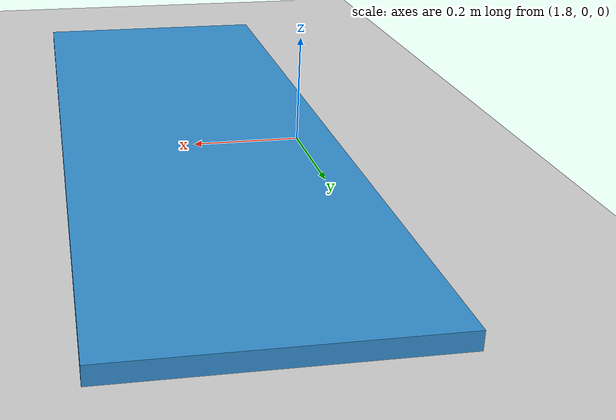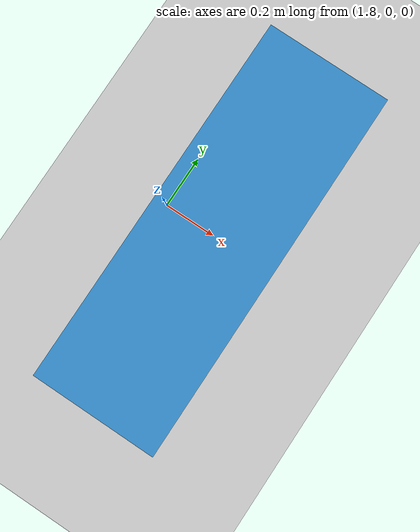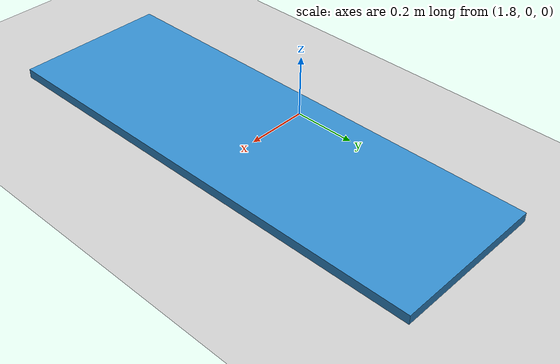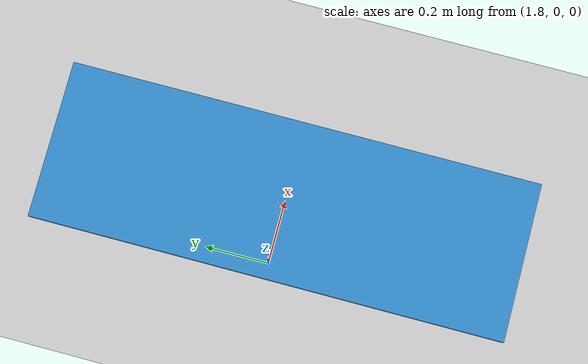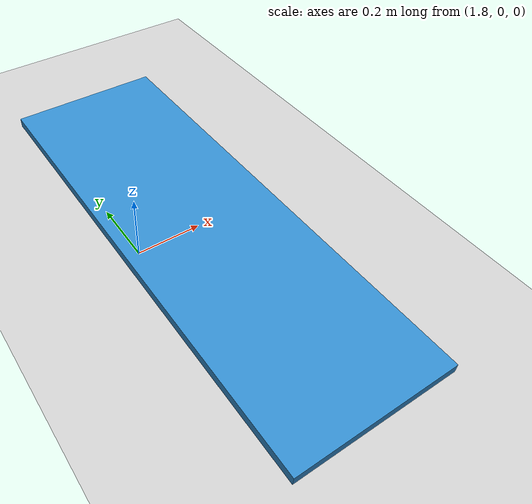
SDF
<?xml version="1.0"?>
<sdf version="1.6">
  <world name="step_30mm">
    <gravity>0 0 -9.81</gravity>
    <physics name="default_physics" default="0" type="ode">
      <max_step_size>0.001</max_step_size>
      <real_time_update_rate>1000</real_time_update_rate>
      <ode>
        <solver><type>quick</type><iters>100</iters><sor>1.3</sor><use_dynamic_moi_rescaling>true</use_dynamic_moi_rescaling></solver>
        <constraints><cfm>0.0</cfm><erp>0.2</erp><contact_max_correcting_vel>0.1</contact_max_correcting_vel><contact_surface_layer>0.001</contact_surface_layer></constraints>
      </ode>
    </physics>
    <include><uri>model://ground_plane</uri></include>
    <include><uri>model://sun</uri></include>
    <model name="step_30mm">
      <static>true</static>
      <pose>2.0 0.0 0.015 0 0 0</pose>
      <link name="link">
        <collision name="collision"><geometry><box><size>0.50 1.50 0.03</size></box></geometry></collision>
        <visual name="visual"><geometry><box><size>0.50 1.50 0.03</size></box></geometry><material><ambient>0.20 0.55 0.80 1</ambient></material></visual>
      </link>
    </model>
  </world>
</sdf>
